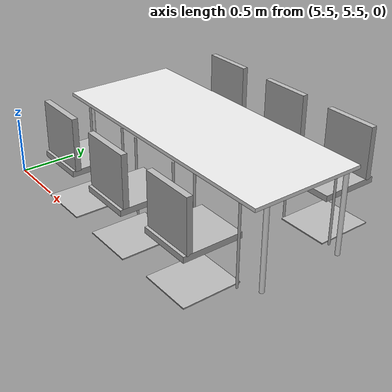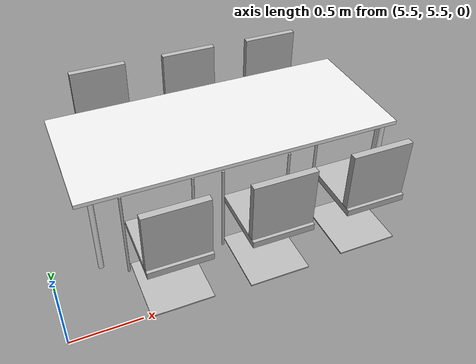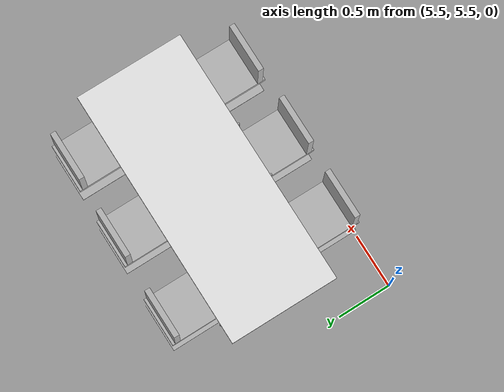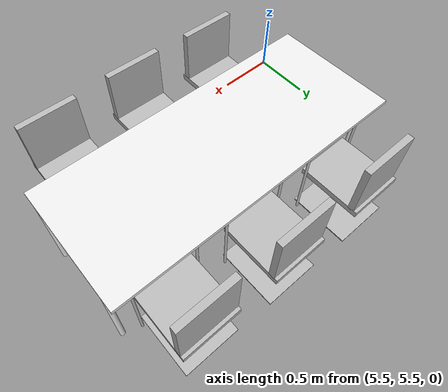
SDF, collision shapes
<sdf version="1.6">
 <model name="erica">
  <model name="table1_chair">
   <model name="h_chair">
    <link name="link_0">
     <inertial>
      <mass>1</mass>
      <inertia>
       <ixx>0.166667</ixx>
       <ixy>0</ixy>
       <ixz>0</ixz>
       <iyy>0.166667</iyy>
       <iyz>0</iyz>
       <izz>0.166667</izz>
      </inertia>
     </inertial>
     <visual name="visual">
      <geometry>
       <mesh><uri>model://erica/elements/h_chair/meshes/chair.dae</uri><scale>1 1 1</scale></mesh>
      </geometry>
     </visual>
     <collision name="collision_4">
      <pose>0 0 0.41 0 -0 0</pose>
      <geometry><box><size>0.5 0.45 0.05</size></box></geometry>
      <surface>
       <friction>
        <ode><mu>1</mu><mu2>1</mu2><fdir1>0 0 0</fdir1><slip1>0</slip1><slip2>0</slip2></ode>
        <torsional>
         <coefficient>1</coefficient>
         <patch_radius>0</patch_radius>
         <surface_radius>0</surface_radius>
         <use_patch_radius>1</use_patch_radius>
         <ode><slip>0</slip></ode>
        </torsional>
       </friction>
       <bounce><restitution_coefficient>0</restitution_coefficient><threshold>1e+06</threshold></bounce>
       <contact>
        <collide_without_contact>0</collide_without_contact>
        <collide_without_contact_bitmask>1</collide_without_contact_bitmask>
        <collide_bitmask>1</collide_bitmask>
        <ode>
         <soft_cfm>0</soft_cfm>
         <soft_erp>0.2</soft_erp>
         <kp>1e+13</kp>
         <kd>1</kd>
         <max_vel>0.01</max_vel>
         <min_depth>0</min_depth>
        </ode>
        <bullet>
         <split_impulse>1</split_impulse>
         <split_impulse_penetration_threshold>-0.01</split_impulse_penetration_threshold>
         <soft_cfm>0</soft_cfm>
         <soft_erp>0.2</soft_erp>
         <kp>1e+13</kp>
         <kd>1</kd>
        </bullet>
       </contact>
      </surface>
     </collision>
     <collision name="collision_3">
      <pose>0 0 0.01 0 -0 0</pose>
      <geometry><box><size>0.5 0.45 0.01</size></box></geometry>
      <surface>
       <friction>
        <ode><mu>1</mu><mu2>1</mu2><fdir1>0 0 0</fdir1><slip1>0</slip1><slip2>0</slip2></ode>
        <torsional>
         <coefficient>1</coefficient>
         <patch_radius>0</patch_radius>
         <surface_radius>0</surface_radius>
         <use_patch_radius>1</use_patch_radius>
         <ode><slip>0</slip></ode>
        </torsional>
       </friction>
       <bounce><restitution_coefficient>0</restitution_coefficient><threshold>1e+06</threshold></bounce>
       <contact>
        <collide_without_contact>0</collide_without_contact>
        <collide_without_contact_bitmask>1</collide_without_contact_bitmask>
        <collide_bitmask>1</collide_bitmask>
        <ode>
         <soft_cfm>0</soft_cfm>
         <soft_erp>0.2</soft_erp>
         <kp>1e+13</kp>
         <kd>1</kd>
         <max_vel>0.01</max_vel>
         <min_depth>0</min_depth>
        </ode>
        <bullet>
         <split_impulse>1</split_impulse>
         <split_impulse_penetration_threshold>-0.01</split_impulse_penetration_threshold>
         <soft_cfm>0</soft_cfm>
         <soft_erp>0.2</soft_erp>
         <kp>1e+13</kp>
         <kd>1</kd>
        </bullet>
       </contact>
      </surface>
     </collision>
     <collision name="collision_5">
      <pose>-0.2 0 0.65 0 -0 0</pose>
      <geometry><box><size>0.05 0.45 0.45</size></box></geometry>
      <surface>
       <friction>
        <ode><mu>1</mu><mu2>1</mu2><fdir1>0 0 0</fdir1><slip1>0</slip1><slip2>0</slip2></ode>
        <torsional>
         <coefficient>1</coefficient>
         <patch_radius>0</patch_radius>
         <surface_radius>0</surface_radius>
         <use_patch_radius>1</use_patch_radius>
         <ode><slip>0</slip></ode>
        </torsional>
       </friction>
       <bounce><restitution_coefficient>0</restitution_coefficient><threshold>1e+06</threshold></bounce>
       <contact>
        <collide_without_contact>0</collide_without_contact>
        <collide_without_contact_bitmask>1</collide_without_contact_bitmask>
        <collide_bitmask>1</collide_bitmask>
        <ode>
         <soft_cfm>0</soft_cfm>
         <soft_erp>0.2</soft_erp>
         <kp>1e+13</kp>
         <kd>1</kd>
         <max_vel>0.01</max_vel>
         <min_depth>0</min_depth>
        </ode>
        <bullet>
         <split_impulse>1</split_impulse>
         <split_impulse_penetration_threshold>-0.01</split_impulse_penetration_threshold>
         <soft_cfm>0</soft_cfm>
         <soft_erp>0.2</soft_erp>
         <kp>1e+13</kp>
         <kd>1</kd>
        </bullet>
       </contact>
      </surface>
     </collision>
     <collision name="collision_6">
      <pose>0.2 -0.25 0.35 0 -0 0</pose>
      <geometry><cylinder><radius>0.01</radius><length>0.7</length></cylinder></geometry>
      <surface>
       <friction>
        <ode><mu>1</mu><mu2>1</mu2><fdir1>0 0 0</fdir1><slip1>0</slip1><slip2>0</slip2></ode>
        <torsional>
         <coefficient>1</coefficient>
         <patch_radius>0</patch_radius>
         <surface_radius>0</surface_radius>
         <use_patch_radius>1</use_patch_radius>
         <ode><slip>0</slip></ode>
        </torsional>
       </friction>
       <bounce><restitution_coefficient>0</restitution_coefficient><threshold>1e+06</threshold></bounce>
       <contact>
        <collide_without_contact>0</collide_without_contact>
        <collide_without_contact_bitmask>1</collide_without_contact_bitmask>
        <collide_bitmask>1</collide_bitmask>
        <ode>
         <soft_cfm>0</soft_cfm>
         <soft_erp>0.2</soft_erp>
         <kp>1e+13</kp>
         <kd>1</kd>
         <max_vel>0.01</max_vel>
         <min_depth>0</min_depth>
        </ode>
        <bullet>
         <split_impulse>1</split_impulse>
         <split_impulse_penetration_threshold>-0.01</split_impulse_penetration_threshold>
         <soft_cfm>0</soft_cfm>
         <soft_erp>0.2</soft_erp>
         <kp>1e+13</kp>
         <kd>1</kd>
        </bullet>
       </contact>
      </surface>
     </collision>
     <collision name="collision_7">
      <pose>0.2 0.25 0.35 0 -0 0</pose>
      <geometry><cylinder><radius>0.01</radius><length>0.7</length></cylinder></geometry>
      <surface>
       <friction>
        <ode><mu>1</mu><mu2>1</mu2><fdir1>0 0 0</fdir1><slip1>0</slip1><slip2>0</slip2></ode>
        <torsional>
         <coefficient>1</coefficient>
         <patch_radius>0</patch_radius>
         <surface_radius>0</surface_radius>
         <use_patch_radius>1</use_patch_radius>
         <ode><slip>0</slip></ode>
        </torsional>
       </friction>
       <bounce><restitution_coefficient>0</restitution_coefficient><threshold>1e+06</threshold></bounce>
       <contact>
        <collide_without_contact>0</collide_without_contact>
        <collide_without_contact_bitmask>1</collide_without_contact_bitmask>
        <collide_bitmask>1</collide_bitmask>
        <ode>
         <soft_cfm>0</soft_cfm>
         <soft_erp>0.2</soft_erp>
         <kp>1e+13</kp>
         <kd>1</kd>
         <max_vel>0.01</max_vel>
         <min_depth>0</min_depth>
        </ode>
        <bullet>
         <split_impulse>1</split_impulse>
         <split_impulse_penetration_threshold>-0.01</split_impulse_penetration_threshold>
         <soft_cfm>0</soft_cfm>
         <soft_erp>0.2</soft_erp>
         <kp>1e+13</kp>
         <kd>1</kd>
        </bullet>
       </contact>
      </surface>
     </collision>
    </link>
    <static>1</static>
    <pose>-0.65015 0.677818 0 0 -0 0</pose>
   </model>
   <model name="h_chair_clone">
    <link name="link_0">
     <inertial>
      <mass>1</mass>
      <inertia>
       <ixx>0.166667</ixx>
       <ixy>0</ixy>
       <ixz>0</ixz>
       <iyy>0.166667</iyy>
       <iyz>0</iyz>
       <izz>0.166667</izz>
      </inertia>
     </inertial>
     <visual name="visual">
      <geometry>
       <mesh><uri>model://erica/elements/h_chair/meshes/chair.dae</uri><scale>1 1 1</scale></mesh>
      </geometry>
     </visual>
     <collision name="collision_4">
      <pose>0 0 0.41 0 -0 0</pose>
      <geometry><box><size>0.5 0.45 0.05</size></box></geometry>
      <surface>
       <friction>
        <ode><mu>1</mu><mu2>1</mu2><fdir1>0 0 0</fdir1><slip1>0</slip1><slip2>0</slip2></ode>
        <torsional>
         <coefficient>1</coefficient>
         <patch_radius>0</patch_radius>
         <surface_radius>0</surface_radius>
         <use_patch_radius>1</use_patch_radius>
         <ode><slip>0</slip></ode>
        </torsional>
       </friction>
       <bounce><restitution_coefficient>0</restitution_coefficient><threshold>1e+06</threshold></bounce>
       <contact>
        <collide_without_contact>0</collide_without_contact>
        <collide_without_contact_bitmask>1</collide_without_contact_bitmask>
        <collide_bitmask>1</collide_bitmask>
        <ode>
         <soft_cfm>0</soft_cfm>
         <soft_erp>0.2</soft_erp>
         <kp>1e+13</kp>
         <kd>1</kd>
         <max_vel>0.01</max_vel>
         <min_depth>0</min_depth>
        </ode>
        <bullet>
         <split_impulse>1</split_impulse>
         <split_impulse_penetration_threshold>-0.01</split_impulse_penetration_threshold>
         <soft_cfm>0</soft_cfm>
         <soft_erp>0.2</soft_erp>
         <kp>1e+13</kp>
         <kd>1</kd>
        </bullet>
       </contact>
      </surface>
     </collision>
     <collision name="collision_3">
      <pose>0 0 0.01 0 -0 0</pose>
      <geometry><box><size>0.5 0.45 0.01</size></box></geometry>
      <surface>
       <friction>
        <ode><mu>1</mu><mu2>1</mu2><fdir1>0 0 0</fdir1><slip1>0</slip1><slip2>0</slip2></ode>
        <torsional>
         <coefficient>1</coefficient>
         <patch_radius>0</patch_radius>
         <surface_radius>0</surface_radius>
         <use_patch_radius>1</use_patch_radius>
         <ode><slip>0</slip></ode>
        </torsional>
       </friction>
       <bounce><restitution_coefficient>0</restitution_coefficient><threshold>1e+06</threshold></bounce>
       <contact>
        <collide_without_contact>0</collide_without_contact>
        <collide_without_contact_bitmask>1</collide_without_contact_bitmask>
        <collide_bitmask>1</collide_bitmask>
        <ode>
         <soft_cfm>0</soft_cfm>
         <soft_erp>0.2</soft_erp>
         <kp>1e+13</kp>
         <kd>1</kd>
         <max_vel>0.01</max_vel>
         <min_depth>0</min_depth>
        </ode>
        <bullet>
         <split_impulse>1</split_impulse>
         <split_impulse_penetration_threshold>-0.01</split_impulse_penetration_threshold>
         <soft_cfm>0</soft_cfm>
         <soft_erp>0.2</soft_erp>
         <kp>1e+13</kp>
         <kd>1</kd>
        </bullet>
       </contact>
      </surface>
     </collision>
     <collision name="collision_5">
      <pose>-0.2 0 0.65 0 -0 0</pose>
      <geometry><box><size>0.05 0.45 0.45</size></box></geometry>
      <surface>
       <friction>
        <ode><mu>1</mu><mu2>1</mu2><fdir1>0 0 0</fdir1><slip1>0</slip1><slip2>0</slip2></ode>
        <torsional>
         <coefficient>1</coefficient>
         <patch_radius>0</patch_radius>
         <surface_radius>0</surface_radius>
         <use_patch_radius>1</use_patch_radius>
         <ode><slip>0</slip></ode>
        </torsional>
       </friction>
       <bounce><restitution_coefficient>0</restitution_coefficient><threshold>1e+06</threshold></bounce>
       <contact>
        <collide_without_contact>0</collide_without_contact>
        <collide_without_contact_bitmask>1</collide_without_contact_bitmask>
        <collide_bitmask>1</collide_bitmask>
        <ode>
         <soft_cfm>0</soft_cfm>
         <soft_erp>0.2</soft_erp>
         <kp>1e+13</kp>
         <kd>1</kd>
         <max_vel>0.01</max_vel>
         <min_depth>0</min_depth>
        </ode>
        <bullet>
         <split_impulse>1</split_impulse>
         <split_impulse_penetration_threshold>-0.01</split_impulse_penetration_threshold>
         <soft_cfm>0</soft_cfm>
         <soft_erp>0.2</soft_erp>
         <kp>1e+13</kp>
         <kd>1</kd>
        </bullet>
       </contact>
      </surface>
     </collision>
     <collision name="collision_6">
      <pose>0.2 -0.25 0.35 0 -0 0</pose>
      <geometry><cylinder><radius>0.01</radius><length>0.7</length></cylinder></geometry>
      <surface>
       <friction>
        <ode><mu>1</mu><mu2>1</mu2><fdir1>0 0 0</fdir1><slip1>0</slip1><slip2>0</slip2></ode>
        <torsional>
         <coefficient>1</coefficient>
         <patch_radius>0</patch_radius>
         <surface_radius>0</surface_radius>
         <use_patch_radius>1</use_patch_radius>
         <ode><slip>0</slip></ode>
        </torsional>
       </friction>
       <bounce><restitution_coefficient>0</restitution_coefficient><threshold>1e+06</threshold></bounce>
       <contact>
        <collide_without_contact>0</collide_without_contact>
        <collide_without_contact_bitmask>1</collide_without_contact_bitmask>
        <collide_bitmask>1</collide_bitmask>
        <ode>
         <soft_cfm>0</soft_cfm>
         <soft_erp>0.2</soft_erp>
         <kp>1e+13</kp>
         <kd>1</kd>
         <max_vel>0.01</max_vel>
         <min_depth>0</min_depth>
        </ode>
        <bullet>
         <split_impulse>1</split_impulse>
         <split_impulse_penetration_threshold>-0.01</split_impulse_penetration_threshold>
         <soft_cfm>0</soft_cfm>
         <soft_erp>0.2</soft_erp>
         <kp>1e+13</kp>
         <kd>1</kd>
        </bullet>
       </contact>
      </surface>
     </collision>
     <collision name="collision_7">
      <pose>0.2 0.25 0.35 0 -0 0</pose>
      <geometry><cylinder><radius>0.01</radius><length>0.7</length></cylinder></geometry>
      <surface>
       <friction>
        <ode><mu>1</mu><mu2>1</mu2><fdir1>0 0 0</fdir1><slip1>0</slip1><slip2>0</slip2></ode>
        <torsional>
         <coefficient>1</coefficient>
         <patch_radius>0</patch_radius>
         <surface_radius>0</surface_radius>
         <use_patch_radius>1</use_patch_radius>
         <ode><slip>0</slip></ode>
        </torsional>
       </friction>
       <bounce><restitution_coefficient>0</restitution_coefficient><threshold>1e+06</threshold></bounce>
       <contact>
        <collide_without_contact>0</collide_without_contact>
        <collide_without_contact_bitmask>1</collide_without_contact_bitmask>
        <collide_bitmask>1</collide_bitmask>
        <ode>
         <soft_cfm>0</soft_cfm>
         <soft_erp>0.2</soft_erp>
         <kp>1e+13</kp>
         <kd>1</kd>
         <max_vel>0.01</max_vel>
         <min_depth>0</min_depth>
        </ode>
        <bullet>
         <split_impulse>1</split_impulse>
         <split_impulse_penetration_threshold>-0.01</split_impulse_penetration_threshold>
         <soft_cfm>0</soft_cfm>
         <soft_erp>0.2</soft_erp>
         <kp>1e+13</kp>
         <kd>1</kd>
        </bullet>
       </contact>
      </surface>
     </collision>
    </link>
    <static>1</static>
    <pose>-0.668032 -0.060178 0 0 -0 0</pose>
   </model>
   <model name="h_chair_clone_0">
    <link name="link_0">
     <inertial>
      <mass>1</mass>
      <inertia>
       <ixx>0.166667</ixx>
       <ixy>0</ixy>
       <ixz>0</ixz>
       <iyy>0.166667</iyy>
       <iyz>0</iyz>
       <izz>0.166667</izz>
      </inertia>
     </inertial>
     <visual name="visual">
      <geometry>
       <mesh><uri>model://erica/elements/h_chair/meshes/chair.dae</uri><scale>1 1 1</scale></mesh>
      </geometry>
     </visual>
     <collision name="collision_4">
      <pose>0 0 0.41 0 -0 0</pose>
      <geometry><box><size>0.5 0.45 0.05</size></box></geometry>
      <surface>
       <friction>
        <ode><mu>1</mu><mu2>1</mu2><fdir1>0 0 0</fdir1><slip1>0</slip1><slip2>0</slip2></ode>
        <torsional>
         <coefficient>1</coefficient>
         <patch_radius>0</patch_radius>
         <surface_radius>0</surface_radius>
         <use_patch_radius>1</use_patch_radius>
         <ode><slip>0</slip></ode>
        </torsional>
       </friction>
       <bounce><restitution_coefficient>0</restitution_coefficient><threshold>1e+06</threshold></bounce>
       <contact>
        <collide_without_contact>0</collide_without_contact>
        <collide_without_contact_bitmask>1</collide_without_contact_bitmask>
        <collide_bitmask>1</collide_bitmask>
        <ode>
         <soft_cfm>0</soft_cfm>
         <soft_erp>0.2</soft_erp>
         <kp>1e+13</kp>
         <kd>1</kd>
         <max_vel>0.01</max_vel>
         <min_depth>0</min_depth>
        </ode>
        <bullet>
         <split_impulse>1</split_impulse>
         <split_impulse_penetration_threshold>-0.01</split_impulse_penetration_threshold>
         <soft_cfm>0</soft_cfm>
         <soft_erp>0.2</soft_erp>
         <kp>1e+13</kp>
         <kd>1</kd>
        </bullet>
       </contact>
      </surface>
     </collision>
     <collision name="collision_3">
      <pose>0 0 0.01 0 -0 0</pose>
      <geometry><box><size>0.5 0.45 0.01</size></box></geometry>
      <surface>
       <friction>
        <ode><mu>1</mu><mu2>1</mu2><fdir1>0 0 0</fdir1><slip1>0</slip1><slip2>0</slip2></ode>
        <torsional>
         <coefficient>1</coefficient>
         <patch_radius>0</patch_radius>
         <surface_radius>0</surface_radius>
         <use_patch_radius>1</use_patch_radius>
         <ode><slip>0</slip></ode>
        </torsional>
       </friction>
       <bounce><restitution_coefficient>0</restitution_coefficient><threshold>1e+06</threshold></bounce>
       <contact>
        <collide_without_contact>0</collide_without_contact>
        <collide_without_contact_bitmask>1</collide_without_contact_bitmask>
        <collide_bitmask>1</collide_bitmask>
        <ode>
         <soft_cfm>0</soft_cfm>
         <soft_erp>0.2</soft_erp>
         <kp>1e+13</kp>
         <kd>1</kd>
         <max_vel>0.01</max_vel>
         <min_depth>0</min_depth>
        </ode>
        <bullet>
         <split_impulse>1</split_impulse>
         <split_impulse_penetration_threshold>-0.01</split_impulse_penetration_threshold>
         <soft_cfm>0</soft_cfm>
         <soft_erp>0.2</soft_erp>
         <kp>1e+13</kp>
         <kd>1</kd>
        </bullet>
       </contact>
      </surface>
     </collision>
     <collision name="collision_5">
      <pose>-0.2 0 0.65 0 -0 0</pose>
      <geometry><box><size>0.05 0.45 0.45</size></box></geometry>
      <surface>
       <friction>
        <ode><mu>1</mu><mu2>1</mu2><fdir1>0 0 0</fdir1><slip1>0</slip1><slip2>0</slip2></ode>
        <torsional>
         <coefficient>1</coefficient>
         <patch_radius>0</patch_radius>
         <surface_radius>0</surface_radius>
         <use_patch_radius>1</use_patch_radius>
         <ode><slip>0</slip></ode>
        </torsional>
       </friction>
       <bounce><restitution_coefficient>0</restitution_coefficient><threshold>1e+06</threshold></bounce>
       <contact>
        <collide_without_contact>0</collide_without_contact>
        <collide_without_contact_bitmask>1</collide_without_contact_bitmask>
        <collide_bitmask>1</collide_bitmask>
        <ode>
         <soft_cfm>0</soft_cfm>
         <soft_erp>0.2</soft_erp>
         <kp>1e+13</kp>
         <kd>1</kd>
         <max_vel>0.01</max_vel>
         <min_depth>0</min_depth>
        </ode>
        <bullet>
         <split_impulse>1</split_impulse>
         <split_impulse_penetration_threshold>-0.01</split_impulse_penetration_threshold>
         <soft_cfm>0</soft_cfm>
         <soft_erp>0.2</soft_erp>
         <kp>1e+13</kp>
         <kd>1</kd>
        </bullet>
       </contact>
      </surface>
     </collision>
     <collision name="collision_6">
      <pose>0.2 -0.25 0.35 0 -0 0</pose>
      <geometry><cylinder><radius>0.01</radius><length>0.7</length></cylinder></geometry>
      <surface>
       <friction>
        <ode><mu>1</mu><mu2>1</mu2><fdir1>0 0 0</fdir1><slip1>0</slip1><slip2>0</slip2></ode>
        <torsional>
         <coefficient>1</coefficient>
         <patch_radius>0</patch_radius>
         <surface_radius>0</surface_radius>
         <use_patch_radius>1</use_patch_radius>
         <ode><slip>0</slip></ode>
        </torsional>
       </friction>
       <bounce><restitution_coefficient>0</restitution_coefficient><threshold>1e+06</threshold></bounce>
       <contact>
        <collide_without_contact>0</collide_without_contact>
        <collide_without_contact_bitmask>1</collide_without_contact_bitmask>
        <collide_bitmask>1</collide_bitmask>
        <ode>
         <soft_cfm>0</soft_cfm>
         <soft_erp>0.2</soft_erp>
         <kp>1e+13</kp>
         <kd>1</kd>
         <max_vel>0.01</max_vel>
         <min_depth>0</min_depth>
        </ode>
        <bullet>
         <split_impulse>1</split_impulse>
         <split_impulse_penetration_threshold>-0.01</split_impulse_penetration_threshold>
         <soft_cfm>0</soft_cfm>
         <soft_erp>0.2</soft_erp>
         <kp>1e+13</kp>
         <kd>1</kd>
        </bullet>
       </contact>
      </surface>
     </collision>
     <collision name="collision_7">
      <pose>0.2 0.25 0.35 0 -0 0</pose>
      <geometry><cylinder><radius>0.01</radius><length>0.7</length></cylinder></geometry>
      <surface>
       <friction>
        <ode><mu>1</mu><mu2>1</mu2><fdir1>0 0 0</fdir1><slip1>0</slip1><slip2>0</slip2></ode>
        <torsional>
         <coefficient>1</coefficient>
         <patch_radius>0</patch_radius>
         <surface_radius>0</surface_radius>
         <use_patch_radius>1</use_patch_radius>
         <ode><slip>0</slip></ode>
        </torsional>
       </friction>
       <bounce><restitution_coefficient>0</restitution_coefficient><threshold>1e+06</threshold></bounce>
       <contact>
        <collide_without_contact>0</collide_without_contact>
        <collide_without_contact_bitmask>1</collide_without_contact_bitmask>
        <collide_bitmask>1</collide_bitmask>
        <ode>
         <soft_cfm>0</soft_cfm>
         <soft_erp>0.2</soft_erp>
         <kp>1e+13</kp>
         <kd>1</kd>
         <max_vel>0.01</max_vel>
         <min_depth>0</min_depth>
        </ode>
        <bullet>
         <split_impulse>1</split_impulse>
         <split_impulse_penetration_threshold>-0.01</split_impulse_penetration_threshold>
         <soft_cfm>0</soft_cfm>
         <soft_erp>0.2</soft_erp>
         <kp>1e+13</kp>
         <kd>1</kd>
        </bullet>
       </contact>
      </surface>
     </collision>
    </link>
    <static>1</static>
    <pose>-0.679941 -0.822301 0 0 -0 0</pose>
   </model>
   <model name="h_chair_clone_1">
    <link name="link_0">
     <inertial>
      <mass>1</mass>
      <inertia>
       <ixx>0.166667</ixx>
       <ixy>0</ixy>
       <ixz>0</ixz>
       <iyy>0.166667</iyy>
       <iyz>0</iyz>
       <izz>0.166667</izz>
      </inertia>
     </inertial>
     <visual name="visual">
      <geometry>
       <mesh><uri>model://erica/elements/h_chair/meshes/chair.dae</uri><scale>1 1 1</scale></mesh>
      </geometry>
     </visual>
     <collision name="collision_4">
      <pose>0 0 0.41 0 -0 0</pose>
      <geometry><box><size>0.5 0.45 0.05</size></box></geometry>
      <surface>
       <friction>
        <ode><mu>1</mu><mu2>1</mu2><fdir1>0 0 0</fdir1><slip1>0</slip1><slip2>0</slip2></ode>
        <torsional>
         <coefficient>1</coefficient>
         <patch_radius>0</patch_radius>
         <surface_radius>0</surface_radius>
         <use_patch_radius>1</use_patch_radius>
         <ode><slip>0</slip></ode>
        </torsional>
       </friction>
       <bounce><restitution_coefficient>0</restitution_coefficient><threshold>1e+06</threshold></bounce>
       <contact>
        <collide_without_contact>0</collide_without_contact>
        <collide_without_contact_bitmask>1</collide_without_contact_bitmask>
        <collide_bitmask>1</collide_bitmask>
        <ode>
         <soft_cfm>0</soft_cfm>
         <soft_erp>0.2</soft_erp>
         <kp>1e+13</kp>
         <kd>1</kd>
         <max_vel>0.01</max_vel>
         <min_depth>0</min_depth>
        </ode>
        <bullet>
         <split_impulse>1</split_impulse>
         <split_impulse_penetration_threshold>-0.01</split_impulse_penetration_threshold>
         <soft_cfm>0</soft_cfm>
         <soft_erp>0.2</soft_erp>
         <kp>1e+13</kp>
         <kd>1</kd>
        </bullet>
       </contact>
      </surface>
     </collision>
     <collision name="collision_3">
      <pose>0 0 0.01 0 -0 0</pose>
      <geometry><box><size>0.5 0.45 0.01</size></box></geometry>
      <surface>
       <friction>
        <ode><mu>1</mu><mu2>1</mu2><fdir1>0 0 0</fdir1><slip1>0</slip1><slip2>0</slip2></ode>
        <torsional>
         <coefficient>1</coefficient>
         <patch_radius>0</patch_radius>
         <surface_radius>0</surface_radius>
         <use_patch_radius>1</use_patch_radius>
         <ode><slip>0</slip></ode>
        </torsional>
       </friction>
       <bounce><restitution_coefficient>0</restitution_coefficient><threshold>1e+06</threshold></bounce>
       <contact>
        <collide_without_contact>0</collide_without_contact>
        <collide_without_contact_bitmask>1</collide_without_contact_bitmask>
        <collide_bitmask>1</collide_bitmask>
        <ode>
         <soft_cfm>0</soft_cfm>
         <soft_erp>0.2</soft_erp>
         <kp>1e+13</kp>
         <kd>1</kd>
         <max_vel>0.01</max_vel>
         <min_depth>0</min_depth>
        </ode>
        <bullet>
         <split_impulse>1</split_impulse>
         <split_impulse_penetration_threshold>-0.01</split_impulse_penetration_threshold>
         <soft_cfm>0</soft_cfm>
         <soft_erp>0.2</soft_erp>
         <kp>1e+13</kp>
         <kd>1</kd>
        </bullet>
       </contact>
      </surface>
     </collision>
     <collision name="collision_5">
      <pose>-0.2 0 0.65 0 -0 0</pose>
      <geometry><box><size>0.05 0.45 0.45</size></box></geometry>
      <surface>
       <friction>
        <ode><mu>1</mu><mu2>1</mu2><fdir1>0 0 0</fdir1><slip1>0</slip1><slip2>0</slip2></ode>
        <torsional>
         <coefficient>1</coefficient>
         <patch_radius>0</patch_radius>
         <surface_radius>0</surface_radius>
         <use_patch_radius>1</use_patch_radius>
         <ode><slip>0</slip></ode>
        </torsional>
       </friction>
       <bounce><restitution_coefficient>0</restitution_coefficient><threshold>1e+06</threshold></bounce>
       <contact>
        <collide_without_contact>0</collide_without_contact>
        <collide_without_contact_bitmask>1</collide_without_contact_bitmask>
        <collide_bitmask>1</collide_bitmask>
        <ode>
         <soft_cfm>0</soft_cfm>
         <soft_erp>0.2</soft_erp>
         <kp>1e+13</kp>
         <kd>1</kd>
         <max_vel>0.01</max_vel>
         <min_depth>0</min_depth>
        </ode>
        <bullet>
         <split_impulse>1</split_impulse>
         <split_impulse_penetration_threshold>-0.01</split_impulse_penetration_threshold>
         <soft_cfm>0</soft_cfm>
         <soft_erp>0.2</soft_erp>
         <kp>1e+13</kp>
         <kd>1</kd>
        </bullet>
       </contact>
      </surface>
     </collision>
     <collision name="collision_6">
      <pose>0.2 -0.25 0.35 0 -0 0</pose>
      <geometry><cylinder><radius>0.01</radius><length>0.7</length></cylinder></geometry>
      <surface>
       <friction>
        <ode><mu>1</mu><mu2>1</mu2><fdir1>0 0 0</fdir1><slip1>0</slip1><slip2>0</slip2></ode>
        <torsional>
         <coefficient>1</coefficient>
         <patch_radius>0</patch_radius>
         <surface_radius>0</surface_radius>
         <use_patch_radius>1</use_patch_radius>
         <ode><slip>0</slip></ode>
        </torsional>
       </friction>
       <bounce><restitution_coefficient>0</restitution_coefficient><threshold>1e+06</threshold></bounce>
       <contact>
        <collide_without_contact>0</collide_without_contact>
        <collide_without_contact_bitmask>1</collide_without_contact_bitmask>
        <collide_bitmask>1</collide_bitmask>
        <ode>
         <soft_cfm>0</soft_cfm>
         <soft_erp>0.2</soft_erp>
         <kp>1e+13</kp>
         <kd>1</kd>
         <max_vel>0.01</max_vel>
         <min_depth>0</min_depth>
        </ode>
        <bullet>
         <split_impulse>1</split_impulse>
         <split_impulse_penetration_threshold>-0.01</split_impulse_penetration_threshold>
         <soft_cfm>0</soft_cfm>
         <soft_erp>0.2</soft_erp>
         <kp>1e+13</kp>
         <kd>1</kd>
        </bullet>
       </contact>
      </surface>
     </collision>
     <collision name="collision_7">
      <pose>0.2 0.25 0.35 0 -0 0</pose>
      <geometry><cylinder><radius>0.01</radius><length>0.7</length></cylinder></geometry>
      <surface>
       <friction>
        <ode><mu>1</mu><mu2>1</mu2><fdir1>0 0 0</fdir1><slip1>0</slip1><slip2>0</slip2></ode>
        <torsional>
         <coefficient>1</coefficient>
         <patch_radius>0</patch_radius>
         <surface_radius>0</surface_radius>
         <use_patch_radius>1</use_patch_radius>
         <ode><slip>0</slip></ode>
        </torsional>
       </friction>
       <bounce><restitution_coefficient>0</restitution_coefficient><threshold>1e+06</threshold></bounce>
       <contact>
        <collide_without_contact>0</collide_without_contact>
        <collide_without_contact_bitmask>1</collide_without_contact_bitmask>
        <collide_bitmask>1</collide_bitmask>
        <ode>
         <soft_cfm>0</soft_cfm>
         <soft_erp>0.2</soft_erp>
         <kp>1e+13</kp>
         <kd>1</kd>
         <max_vel>0.01</max_vel>
         <min_depth>0</min_depth>
        </ode>
        <bullet>
         <split_impulse>1</split_impulse>
         <split_impulse_penetration_threshold>-0.01</split_impulse_penetration_threshold>
         <soft_cfm>0</soft_cfm>
         <soft_erp>0.2</soft_erp>
         <kp>1e+13</kp>
         <kd>1</kd>
        </bullet>
       </contact>
      </surface>
     </collision>
    </link>
    <static>1</static>
    <pose>0.664034 0.665185 0 0 -0 3.13853</pose>
   </model>
   <model name="h_chair_clone_1_clone">
    <link name="link_0">
     <inertial>
      <mass>1</mass>
      <inertia>
       <ixx>0.166667</ixx>
       <ixy>0</ixy>
       <ixz>0</ixz>
       <iyy>0.166667</iyy>
       <iyz>0</iyz>
       <izz>0.166667</izz>
      </inertia>
     </inertial>
     <visual name="visual">
      <geometry>
       <mesh><uri>model://erica/elements/h_chair/meshes/chair.dae</uri><scale>1 1 1</scale></mesh>
      </geometry>
     </visual>
     <collision name="collision_4">
      <pose>0 0 0.41 0 -0 0</pose>
      <geometry><box><size>0.5 0.45 0.05</size></box></geometry>
      <surface>
       <friction>
        <ode><mu>1</mu><mu2>1</mu2><fdir1>0 0 0</fdir1><slip1>0</slip1><slip2>0</slip2></ode>
        <torsional>
         <coefficient>1</coefficient>
         <patch_radius>0</patch_radius>
         <surface_radius>0</surface_radius>
         <use_patch_radius>1</use_patch_radius>
         <ode><slip>0</slip></ode>
        </torsional>
       </friction>
       <bounce><restitution_coefficient>0</restitution_coefficient><threshold>1e+06</threshold></bounce>
       <contact>
        <collide_without_contact>0</collide_without_contact>
        <collide_without_contact_bitmask>1</collide_without_contact_bitmask>
        <collide_bitmask>1</collide_bitmask>
        <ode>
         <soft_cfm>0</soft_cfm>
         <soft_erp>0.2</soft_erp>
         <kp>1e+13</kp>
         <kd>1</kd>
         <max_vel>0.01</max_vel>
         <min_depth>0</min_depth>
        </ode>
        <bullet>
         <split_impulse>1</split_impulse>
         <split_impulse_penetration_threshold>-0.01</split_impulse_penetration_threshold>
         <soft_cfm>0</soft_cfm>
         <soft_erp>0.2</soft_erp>
         <kp>1e+13</kp>
         <kd>1</kd>
        </bullet>
       </contact>
      </surface>
     </collision>
     <collision name="collision_3">
      <pose>0 0 0.01 0 -0 0</pose>
      <geometry><box><size>0.5 0.45 0.01</size></box></geometry>
      <surface>
       <friction>
        <ode><mu>1</mu><mu2>1</mu2><fdir1>0 0 0</fdir1><slip1>0</slip1><slip2>0</slip2></ode>
        <torsional>
         <coefficient>1</coefficient>
         <patch_radius>0</patch_radius>
         <surface_radius>0</surface_radius>
         <use_patch_radius>1</use_patch_radius>
         <ode><slip>0</slip></ode>
        </torsional>
       </friction>
       <bounce><restitution_coefficient>0</restitution_coefficient><threshold>1e+06</threshold></bounce>
       <contact>
        <collide_without_contact>0</collide_without_contact>
        <collide_without_contact_bitmask>1</collide_without_contact_bitmask>
        <collide_bitmask>1</collide_bitmask>
        <ode>
         <soft_cfm>0</soft_cfm>
         <soft_erp>0.2</soft_erp>
         <kp>1e+13</kp>
         <kd>1</kd>
         <max_vel>0.01</max_vel>
         <min_depth>0</min_depth>
        </ode>
        <bullet>
         <split_impulse>1</split_impulse>
         <split_impulse_penetration_threshold>-0.01</split_impulse_penetration_threshold>
         <soft_cfm>0</soft_cfm>
         <soft_erp>0.2</soft_erp>
         <kp>1e+13</kp>
         <kd>1</kd>
        </bullet>
       </contact>
      </surface>
     </collision>
     <collision name="collision_5">
      <pose>-0.2 0 0.65 0 -0 0</pose>
      <geometry><box><size>0.05 0.45 0.45</size></box></geometry>
      <surface>
       <friction>
        <ode><mu>1</mu><mu2>1</mu2><fdir1>0 0 0</fdir1><slip1>0</slip1><slip2>0</slip2></ode>
        <torsional>
         <coefficient>1</coefficient>
         <patch_radius>0</patch_radius>
         <surface_radius>0</surface_radius>
         <use_patch_radius>1</use_patch_radius>
         <ode><slip>0</slip></ode>
        </torsional>
       </friction>
       <bounce><restitution_coefficient>0</restitution_coefficient><threshold>1e+06</threshold></bounce>
       <contact>
        <collide_without_contact>0</collide_without_contact>
        <collide_without_contact_bitmask>1</collide_without_contact_bitmask>
        <collide_bitmask>1</collide_bitmask>
        <ode>
         <soft_cfm>0</soft_cfm>
         <soft_erp>0.2</soft_erp>
         <kp>1e+13</kp>
         <kd>1</kd>
         <max_vel>0.01</max_vel>
         <min_depth>0</min_depth>
        </ode>
        <bullet>
         <split_impulse>1</split_impulse>
         <split_impulse_penetration_threshold>-0.01</split_impulse_penetration_threshold>
         <soft_cfm>0</soft_cfm>
         <soft_erp>0.2</soft_erp>
         <kp>1e+13</kp>
         <kd>1</kd>
        </bullet>
       </contact>
      </surface>
     </collision>
     <collision name="collision_6">
      <pose>0.2 -0.25 0.35 0 -0 0</pose>
      <geometry><cylinder><radius>0.01</radius><length>0.7</length></cylinder></geometry>
      <surface>
       <friction>
        <ode><mu>1</mu><mu2>1</mu2><fdir1>0 0 0</fdir1><slip1>0</slip1><slip2>0</slip2></ode>
        <torsional>
         <coefficient>1</coefficient>
         <patch_radius>0</patch_radius>
         <surface_radius>0</surface_radius>
         <use_patch_radius>1</use_patch_radius>
         <ode><slip>0</slip></ode>
        </torsional>
       </friction>
       <bounce><restitution_coefficient>0</restitution_coefficient><threshold>1e+06</threshold></bounce>
       <contact>
        <collide_without_contact>0</collide_without_contact>
        <collide_without_contact_bitmask>1</collide_without_contact_bitmask>
        <collide_bitmask>1</collide_bitmask>
        <ode>
         <soft_cfm>0</soft_cfm>
         <soft_erp>0.2</soft_erp>
         <kp>1e+13</kp>
         <kd>1</kd>
         <max_vel>0.01</max_vel>
         <min_depth>0</min_depth>
        </ode>
        <bullet>
         <split_impulse>1</split_impulse>
         <split_impulse_penetration_threshold>-0.01</split_impulse_penetration_threshold>
         <soft_cfm>0</soft_cfm>
         <soft_erp>0.2</soft_erp>
         <kp>1e+13</kp>
         <kd>1</kd>
        </bullet>
       </contact>
      </surface>
     </collision>
     <collision name="collision_7">
      <pose>0.2 0.25 0.35 0 -0 0</pose>
      <geometry><cylinder><radius>0.01</radius><length>0.7</length></cylinder></geometry>
      <surface>
       <friction>
        <ode><mu>1</mu><mu2>1</mu2><fdir1>0 0 0</fdir1><slip1>0</slip1><slip2>0</slip2></ode>
        <torsional>
         <coefficient>1</coefficient>
         <patch_radius>0</patch_radius>
         <surface_radius>0</surface_radius>
         <use_patch_radius>1</use_patch_radius>
         <ode><slip>0</slip></ode>
        </torsional>
       </friction>
       <bounce><restitution_coefficient>0</restitution_coefficient><threshold>1e+06</threshold></bounce>
       <contact>
        <collide_without_contact>0</collide_without_contact>
        <collide_without_contact_bitmask>1</collide_without_contact_bitmask>
        <collide_bitmask>1</collide_bitmask>
        <ode>
         <soft_cfm>0</soft_cfm>
         <soft_erp>0.2</soft_erp>
         <kp>1e+13</kp>
         <kd>1</kd>
         <max_vel>0.01</max_vel>
         <min_depth>0</min_depth>
        </ode>
        <bullet>
         <split_impulse>1</split_impulse>
         <split_impulse_penetration_threshold>-0.01</split_impulse_penetration_threshold>
         <soft_cfm>0</soft_cfm>
         <soft_erp>0.2</soft_erp>
         <kp>1e+13</kp>
         <kd>1</kd>
        </bullet>
       </contact>
      </surface>
     </collision>
    </link>
    <static>1</static>
    <pose>0.671484 -0.777358 0 0 -0 3.13853</pose>
   </model>
   <model name="h_chair_clone_1_clone_clone">
    <link name="link_0">
     <inertial>
      <mass>1</mass>
      <inertia>
       <ixx>0.166667</ixx>
       <ixy>0</ixy>
       <ixz>0</ixz>
       <iyy>0.166667</iyy>
       <iyz>0</iyz>
       <izz>0.166667</izz>
      </inertia>
     </inertial>
     <visual name="visual">
      <geometry>
       <mesh><uri>model://erica/elements/h_chair/meshes/chair.dae</uri><scale>1 1 1</scale></mesh>
      </geometry>
     </visual>
     <collision name="collision_4">
      <pose>0 0 0.41 0 -0 0</pose>
      <geometry><box><size>0.5 0.45 0.05</size></box></geometry>
      <surface>
       <friction>
        <ode><mu>1</mu><mu2>1</mu2><fdir1>0 0 0</fdir1><slip1>0</slip1><slip2>0</slip2></ode>
        <torsional>
         <coefficient>1</coefficient>
         <patch_radius>0</patch_radius>
         <surface_radius>0</surface_radius>
         <use_patch_radius>1</use_patch_radius>
         <ode><slip>0</slip></ode>
        </torsional>
       </friction>
       <bounce><restitution_coefficient>0</restitution_coefficient><threshold>1e+06</threshold></bounce>
       <contact>
        <collide_without_contact>0</collide_without_contact>
        <collide_without_contact_bitmask>1</collide_without_contact_bitmask>
        <collide_bitmask>1</collide_bitmask>
        <ode>
         <soft_cfm>0</soft_cfm>
         <soft_erp>0.2</soft_erp>
         <kp>1e+13</kp>
         <kd>1</kd>
         <max_vel>0.01</max_vel>
         <min_depth>0</min_depth>
        </ode>
        <bullet>
         <split_impulse>1</split_impulse>
         <split_impulse_penetration_threshold>-0.01</split_impulse_penetration_threshold>
         <soft_cfm>0</soft_cfm>
         <soft_erp>0.2</soft_erp>
         <kp>1e+13</kp>
         <kd>1</kd>
        </bullet>
       </contact>
      </surface>
     </collision>
     <collision name="collision_3">
      <pose>0 0 0.01 0 -0 0</pose>
      <geometry><box><size>0.5 0.45 0.01</size></box></geometry>
      <surface>
       <friction>
        <ode><mu>1</mu><mu2>1</mu2><fdir1>0 0 0</fdir1><slip1>0</slip1><slip2>0</slip2></ode>
        <torsional>
         <coefficient>1</coefficient>
         <patch_radius>0</patch_radius>
         <surface_radius>0</surface_radius>
         <use_patch_radius>1</use_patch_radius>
         <ode><slip>0</slip></ode>
        </torsional>
       </friction>
       <bounce><restitution_coefficient>0</restitution_coefficient><threshold>1e+06</threshold></bounce>
       <contact>
        <collide_without_contact>0</collide_without_contact>
        <collide_without_contact_bitmask>1</collide_without_contact_bitmask>
        <collide_bitmask>1</collide_bitmask>
        <ode>
         <soft_cfm>0</soft_cfm>
         <soft_erp>0.2</soft_erp>
         <kp>1e+13</kp>
         <kd>1</kd>
         <max_vel>0.01</max_vel>
         <min_depth>0</min_depth>
        </ode>
        <bullet>
         <split_impulse>1</split_impulse>
         <split_impulse_penetration_threshold>-0.01</split_impulse_penetration_threshold>
         <soft_cfm>0</soft_cfm>
         <soft_erp>0.2</soft_erp>
         <kp>1e+13</kp>
         <kd>1</kd>
        </bullet>
       </contact>
      </surface>
     </collision>
     <collision name="collision_5">
      <pose>-0.2 0 0.65 0 -0 0</pose>
      <geometry><box><size>0.05 0.45 0.45</size></box></geometry>
      <surface>
       <friction>
        <ode><mu>1</mu><mu2>1</mu2><fdir1>0 0 0</fdir1><slip1>0</slip1><slip2>0</slip2></ode>
        <torsional>
         <coefficient>1</coefficient>
         <patch_radius>0</patch_radius>
         <surface_radius>0</surface_radius>
         <use_patch_radius>1</use_patch_radius>
         <ode><slip>0</slip></ode>
        </torsional>
       </friction>
       <bounce><restitution_coefficient>0</restitution_coefficient><threshold>1e+06</threshold></bounce>
       <contact>
        <collide_without_contact>0</collide_without_contact>
        <collide_without_contact_bitmask>1</collide_without_contact_bitmask>
        <collide_bitmask>1</collide_bitmask>
        <ode>
         <soft_cfm>0</soft_cfm>
         <soft_erp>0.2</soft_erp>
         <kp>1e+13</kp>
         <kd>1</kd>
         <max_vel>0.01</max_vel>
         <min_depth>0</min_depth>
        </ode>
        <bullet>
         <split_impulse>1</split_impulse>
         <split_impulse_penetration_threshold>-0.01</split_impulse_penetration_threshold>
         <soft_cfm>0</soft_cfm>
         <soft_erp>0.2</soft_erp>
         <kp>1e+13</kp>
         <kd>1</kd>
        </bullet>
       </contact>
      </surface>
     </collision>
     <collision name="collision_6">
      <pose>0.2 -0.25 0.35 0 -0 0</pose>
      <geometry><cylinder><radius>0.01</radius><length>0.7</length></cylinder></geometry>
      <surface>
       <friction>
        <ode><mu>1</mu><mu2>1</mu2><fdir1>0 0 0</fdir1><slip1>0</slip1><slip2>0</slip2></ode>
        <torsional>
         <coefficient>1</coefficient>
         <patch_radius>0</patch_radius>
         <surface_radius>0</surface_radius>
         <use_patch_radius>1</use_patch_radius>
         <ode><slip>0</slip></ode>
        </torsional>
       </friction>
       <bounce><restitution_coefficient>0</restitution_coefficient><threshold>1e+06</threshold></bounce>
       <contact>
        <collide_without_contact>0</collide_without_contact>
        <collide_without_contact_bitmask>1</collide_without_contact_bitmask>
        <collide_bitmask>1</collide_bitmask>
        <ode>
         <soft_cfm>0</soft_cfm>
         <soft_erp>0.2</soft_erp>
         <kp>1e+13</kp>
         <kd>1</kd>
         <max_vel>0.01</max_vel>
         <min_depth>0</min_depth>
        </ode>
        <bullet>
         <split_impulse>1</split_impulse>
         <split_impulse_penetration_threshold>-0.01</split_impulse_penetration_threshold>
         <soft_cfm>0</soft_cfm>
         <soft_erp>0.2</soft_erp>
         <kp>1e+13</kp>
         <kd>1</kd>
        </bullet>
       </contact>
      </surface>
     </collision>
     <collision name="collision_7">
      <pose>0.2 0.25 0.35 0 -0 0</pose>
      <geometry><cylinder><radius>0.01</radius><length>0.7</length></cylinder></geometry>
      <surface>
       <friction>
        <ode><mu>1</mu><mu2>1</mu2><fdir1>0 0 0</fdir1><slip1>0</slip1><slip2>0</slip2></ode>
        <torsional>
         <coefficient>1</coefficient>
         <patch_radius>0</patch_radius>
         <surface_radius>0</surface_radius>
         <use_patch_radius>1</use_patch_radius>
         <ode><slip>0</slip></ode>
        </torsional>
       </friction>
       <bounce><restitution_coefficient>0</restitution_coefficient><threshold>1e+06</threshold></bounce>
       <contact>
        <collide_without_contact>0</collide_without_contact>
        <collide_without_contact_bitmask>1</collide_without_contact_bitmask>
        <collide_bitmask>1</collide_bitmask>
        <ode>
         <soft_cfm>0</soft_cfm>
         <soft_erp>0.2</soft_erp>
         <kp>1e+13</kp>
         <kd>1</kd>
         <max_vel>0.01</max_vel>
         <min_depth>0</min_depth>
        </ode>
        <bullet>
         <split_impulse>1</split_impulse>
         <split_impulse_penetration_threshold>-0.01</split_impulse_penetration_threshold>
         <soft_cfm>0</soft_cfm>
         <soft_erp>0.2</soft_erp>
         <kp>1e+13</kp>
         <kd>1</kd>
        </bullet>
       </contact>
      </surface>
     </collision>
    </link>
    <static>1</static>
    <pose>0.685434 -0.0617 0 0 -0 3.13853</pose>
   </model>
   <model name="h_table">
    <link name="link">
     <inertial>
      <inertia><ixx>1</ixx><ixy>0</ixy><ixz>0</ixz><iyy>1</iyy><iyz>0</iyz><izz>1</izz></inertia>
      <mass>1</mass>
     </inertial>
     <visual name="visual1">
      <pose>-0.5 0 0.72 0 -0 0</pose>
      <geometry><box><size>2.4 1 0.04</size></box></geometry>
      <material>
       <script><uri>file://media/materials/scripts/gazebo.material</uri><name>Gazebo/White</name></script>
       <ambient>1 1 1 1</ambient>
       <diffuse>1 1 1 1</diffuse>
       <specular>0.2 0.2 0.2 1</specular>
       <emissive>0 0 0 1</emissive>
       <shader type="vertex"><normal_map>__default__</normal_map></shader>
      </material>
     </visual>
     <visual name="front_right_leg">
      <pose>0.68 -0.38 0.36 0 -0 0</pose>
      <geometry><cylinder><radius>0.02</radius><length>0.72</length></cylinder></geometry>
      <material>
       <script><uri>file://media/materials/scripts/gazebo.material</uri><name>Gazebo/White</name></script>
       <ambient>0.3 0.3 0.3 1</ambient>
       <diffuse>0.7 0.7 0.7 1</diffuse>
       <specular>0.01 0.01 0.01 1</specular>
       <emissive>0 0 0 1</emissive>
       <shader type="vertex"><normal_map>__default__</normal_map></shader>
      </material>
     </visual>
     <visual name="back_left_leg">
      <pose>-1.58 0.38 0.36 0 -0 0</pose>
      <geometry><cylinder><radius>0.02</radius><length>0.72</length></cylinder></geometry>
      <material>
       <script><uri>file://media/materials/scripts/gazebo.material</uri><name>Gazebo/White</name></script>
       <ambient>0.3 0.3 0.3 1</ambient>
       <diffuse>0.7 0.7 0.7 1</diffuse>
       <specular>0.01 0.01 0.01 1</specular>
       <emissive>0 0 0 1</emissive>
       <shader type="vertex"><normal_map>__default__</normal_map></shader>
      </material>
     </visual>
     <visual name="back_right_leg">
      <pose>-1.58 -0.38 0.36 0 -0 0</pose>
      <geometry><cylinder><radius>0.02</radius><length>0.72</length></cylinder></geometry>
      <material>
       <script><uri>file://media/materials/scripts/gazebo.material</uri><name>Gazebo/White</name></script>
       <ambient>0.3 0.3 0.3 1</ambient>
       <diffuse>0.7 0.7 0.7 1</diffuse>
       <specular>0.01 0.01 0.01 1</specular>
       <emissive>0 0 0 1</emissive>
       <shader type="vertex"><normal_map>__default__</normal_map></shader>
      </material>
     </visual>
     <visual name="front_left_leg">
      <pose>0.68 0.38 0.36 0 -0 0</pose>
      <geometry><cylinder><radius>0.02</radius><length>0.72</length></cylinder></geometry>
      <material>
       <script><uri>file://media/materials/scripts/gazebo.material</uri><name>Gazebo/White</name></script>
       <ambient>0.3 0.3 0.3 1</ambient>
       <diffuse>0.7 0.7 0.7 1</diffuse>
       <specular>0.01 0.01 0.01 1</specular>
       <emissive>0 0 0 1</emissive>
       <shader type="vertex"><normal_map>__default__</normal_map></shader>
      </material>
     </visual>
     <collision name="back_right_leg">
      <pose>-1.58 -0.38 0.36 0 -0 0</pose>
      <geometry><cylinder><radius>0.02</radius><length>0.72</length></cylinder></geometry>
      <surface>
       <friction>
        <ode><mu>1</mu><mu2>1</mu2><fdir1>0 0 0</fdir1><slip1>0</slip1><slip2>0</slip2></ode>
        <torsional>
         <coefficient>1</coefficient>
         <patch_radius>0</patch_radius>
         <surface_radius>0</surface_radius>
         <use_patch_radius>1</use_patch_radius>
         <ode><slip>0</slip></ode>
        </torsional>
       </friction>
       <bounce><restitution_coefficient>0</restitution_coefficient><threshold>1e+06</threshold></bounce>
       <contact>
        <collide_without_contact>0</collide_without_contact>
        <collide_without_contact_bitmask>1</collide_without_contact_bitmask>
        <collide_bitmask>1</collide_bitmask>
        <ode>
         <soft_cfm>0</soft_cfm>
         <soft_erp>0.2</soft_erp>
         <kp>1e+13</kp>
         <kd>1</kd>
         <max_vel>0.01</max_vel>
         <min_depth>0</min_depth>
        </ode>
        <bullet>
         <split_impulse>1</split_impulse>
         <split_impulse_penetration_threshold>-0.01</split_impulse_penetration_threshold>
         <soft_cfm>0</soft_cfm>
         <soft_erp>0.2</soft_erp>
         <kp>1e+13</kp>
         <kd>1</kd>
        </bullet>
       </contact>
      </surface>
     </collision>
     <collision name="surface">
      <pose>-0.5 0 0.72 0 -0 0</pose>
      <geometry><box><size>2.4 1 0.03</size></box></geometry>
      <surface>
       <friction>
        <ode><mu>0.6</mu><mu2>0.6</mu2><fdir1>0 0 0</fdir1><slip1>0</slip1><slip2>0</slip2></ode>
        <torsional>
         <coefficient>1</coefficient>
         <patch_radius>0</patch_radius>
         <surface_radius>0</surface_radius>
         <use_patch_radius>1</use_patch_radius>
         <ode><slip>0</slip></ode>
        </torsional>
       </friction>
       <bounce><restitution_coefficient>0</restitution_coefficient><threshold>1e+06</threshold></bounce>
       <contact>
        <collide_without_contact>0</collide_without_contact>
        <collide_without_contact_bitmask>1</collide_without_contact_bitmask>
        <collide_bitmask>1</collide_bitmask>
        <ode>
         <soft_cfm>0</soft_cfm>
         <soft_erp>0.2</soft_erp>
         <kp>1e+13</kp>
         <kd>1</kd>
         <max_vel>0.01</max_vel>
         <min_depth>0</min_depth>
        </ode>
        <bullet>
         <split_impulse>1</split_impulse>
         <split_impulse_penetration_threshold>-0.01</split_impulse_penetration_threshold>
         <soft_cfm>0</soft_cfm>
         <soft_erp>0.2</soft_erp>
         <kp>1e+13</kp>
         <kd>1</kd>
        </bullet>
       </contact>
      </surface>
     </collision>
     <collision name="back_left_leg">
      <pose>-1.58 0.38 0.36 0 -0 0</pose>
      <geometry><cylinder><radius>0.02</radius><length>0.72</length></cylinder></geometry>
      <surface>
       <friction>
        <ode><mu>1</mu><mu2>1</mu2><fdir1>0 0 0</fdir1><slip1>0</slip1><slip2>0</slip2></ode>
        <torsional>
         <coefficient>1</coefficient>
         <patch_radius>0</patch_radius>
         <surface_radius>0</surface_radius>
         <use_patch_radius>1</use_patch_radius>
         <ode><slip>0</slip></ode>
        </torsional>
       </friction>
       <bounce><restitution_coefficient>0</restitution_coefficient><threshold>1e+06</threshold></bounce>
       <contact>
        <collide_without_contact>0</collide_without_contact>
        <collide_without_contact_bitmask>1</collide_without_contact_bitmask>
        <collide_bitmask>1</collide_bitmask>
        <ode>
         <soft_cfm>0</soft_cfm>
         <soft_erp>0.2</soft_erp>
         <kp>1e+13</kp>
         <kd>1</kd>
         <max_vel>0.01</max_vel>
         <min_depth>0</min_depth>
        </ode>
        <bullet>
         <split_impulse>1</split_impulse>
         <split_impulse_penetration_threshold>-0.01</split_impulse_penetration_threshold>
         <soft_cfm>0</soft_cfm>
         <soft_erp>0.2</soft_erp>
         <kp>1e+13</kp>
         <kd>1</kd>
        </bullet>
       </contact>
      </surface>
     </collision>
     <collision name="front_right_leg">
      <pose>0.68 -0.38 0.36 0 -0 0</pose>
      <geometry><cylinder><radius>0.02</radius><length>0.72</length></cylinder></geometry>
      <surface>
       <friction>
        <ode><mu>1</mu><mu2>1</mu2><fdir1>0 0 0</fdir1><slip1>0</slip1><slip2>0</slip2></ode>
        <torsional>
         <coefficient>1</coefficient>
         <patch_radius>0</patch_radius>
         <surface_radius>0</surface_radius>
         <use_patch_radius>1</use_patch_radius>
         <ode><slip>0</slip></ode>
        </torsional>
       </friction>
       <bounce><restitution_coefficient>0</restitution_coefficient><threshold>1e+06</threshold></bounce>
       <contact>
        <collide_without_contact>0</collide_without_contact>
        <collide_without_contact_bitmask>1</collide_without_contact_bitmask>
        <collide_bitmask>1</collide_bitmask>
        <ode>
         <soft_cfm>0</soft_cfm>
         <soft_erp>0.2</soft_erp>
         <kp>1e+13</kp>
         <kd>1</kd>
         <max_vel>0.01</max_vel>
         <min_depth>0</min_depth>
        </ode>
        <bullet>
         <split_impulse>1</split_impulse>
         <split_impulse_penetration_threshold>-0.01</split_impulse_penetration_threshold>
         <soft_cfm>0</soft_cfm>
         <soft_erp>0.2</soft_erp>
         <kp>1e+13</kp>
         <kd>1</kd>
        </bullet>
       </contact>
      </surface>
     </collision>
     <collision name="front_left_leg">
      <pose>0.68 0.38 0.36 0 -0 0</pose>
      <geometry><cylinder><radius>0.02</radius><length>0.72</length></cylinder></geometry>
      <surface>
       <friction>
        <ode><mu>1</mu><mu2>1</mu2><fdir1>0 0 0</fdir1><slip1>0</slip1><slip2>0</slip2></ode>
        <torsional>
         <coefficient>1</coefficient>
         <patch_radius>0</patch_radius>
         <surface_radius>0</surface_radius>
         <use_patch_radius>1</use_patch_radius>
         <ode><slip>0</slip></ode>
        </torsional>
       </friction>
       <bounce><restitution_coefficient>0</restitution_coefficient><threshold>1e+06</threshold></bounce>
       <contact>
        <collide_without_contact>0</collide_without_contact>
        <collide_without_contact_bitmask>1</collide_without_contact_bitmask>
        <collide_bitmask>1</collide_bitmask>
        <ode>
         <soft_cfm>0</soft_cfm>
         <soft_erp>0.2</soft_erp>
         <kp>1e+13</kp>
         <kd>1</kd>
         <max_vel>0.01</max_vel>
         <min_depth>0</min_depth>
        </ode>
        <bullet>
         <split_impulse>1</split_impulse>
         <split_impulse_penetration_threshold>-0.01</split_impulse_penetration_threshold>
         <soft_cfm>0</soft_cfm>
         <soft_erp>0.2</soft_erp>
         <kp>1e+13</kp>
         <kd>1</kd>
        </bullet>
       </contact>
      </surface>
     </collision>
    </link>
    <static>1</static>
    <pose>-0.022829 0.378538 0 0 -0 1.56934</pose>
   </model>
   <static>1</static>
   <pose>7.05066 6.40003 0 0 0 -1.57048</pose>
  </model>
  <static>1</static>
 </model>
</sdf>
